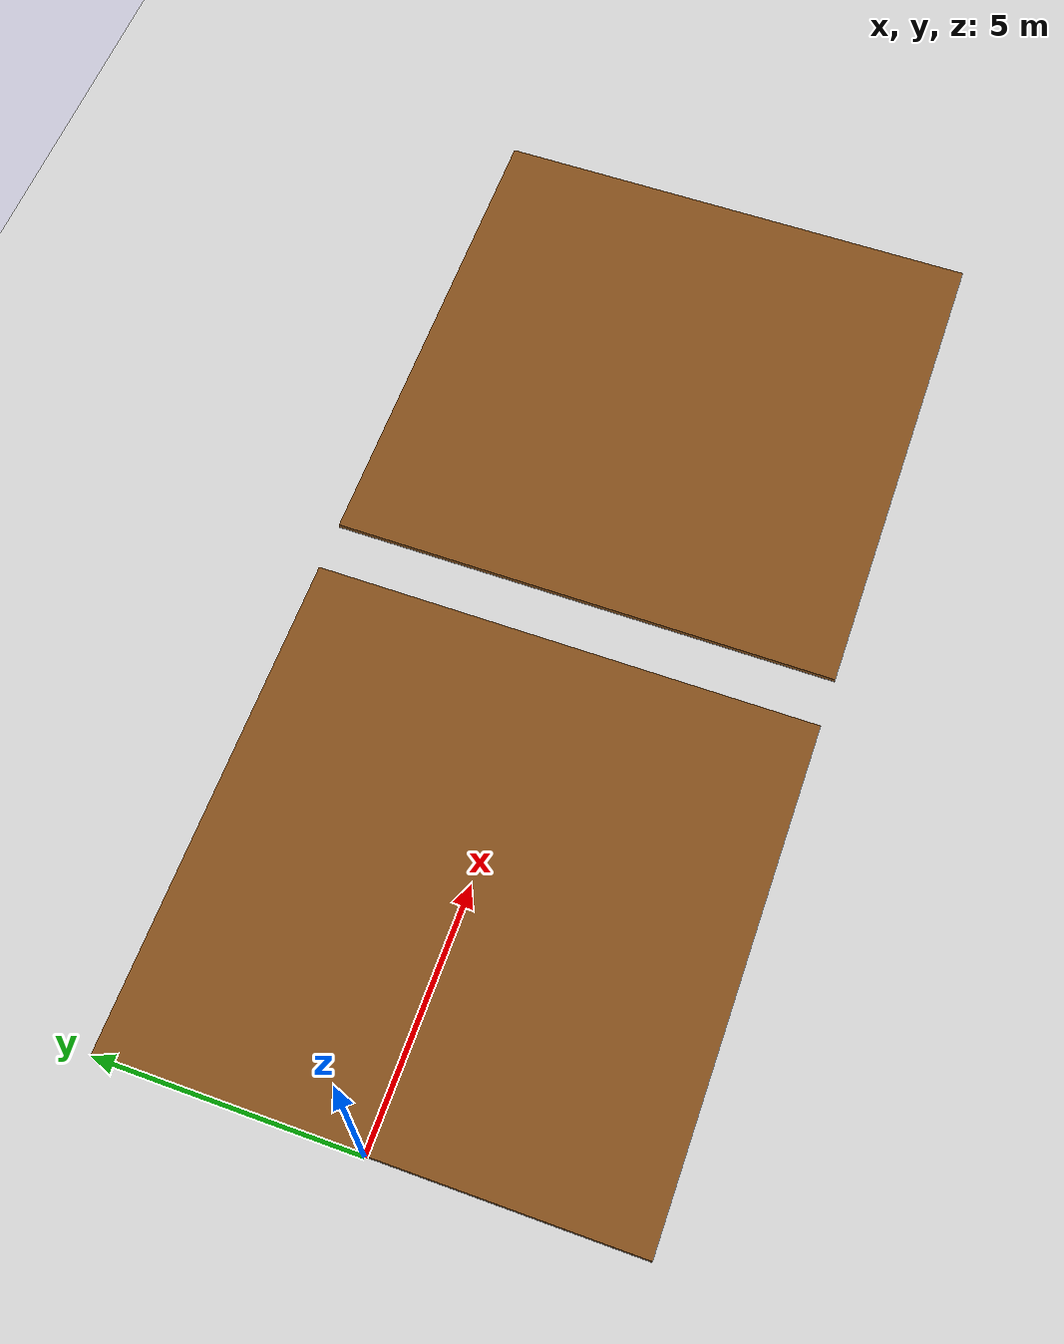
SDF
<?xml version="1.0" ?>
<sdf version="1.9">
  <world name="rough_terrain">

    <!-- 1. Essential Plugins -->
    <plugin filename="gz-sim-physics-system" name="gz::sim::systems::Physics"/>
    <plugin filename="gz-sim-user-commands-system" name="gz::sim::systems::UserCommands"/>
    <plugin filename="gz-sim-scene-broadcaster-system" name="gz::sim::systems::SceneBroadcaster"/>
    <plugin filename="gz-sim-sensors-system" name="gz::sim::systems::Sensors">
      <render_engine>ogre2</render_engine>
    </plugin>

    <!-- 2. Sun & Ground -->
    <light type="directional" name="sun">
      <cast_shadows>true</cast_shadows>
      <pose>0 0 10 0 0 0</pose>
      <diffuse>0.8 0.8 0.8 1</diffuse>
      <specular>0.2 0.2 0.2 1</specular>
      <direction>-0.5 0.1 -0.9</direction>
    </light>

    <model name="ground_plane">
      <static>true</static>
      <link name="link">
        <collision name="collision">
          <geometry><plane><normal>0 0 1</normal><size>100 100</size></plane></geometry>
        </collision>
        <visual name="visual">
          <geometry><plane><normal>0 0 1</normal><size>100 100</size></plane></geometry>
          <material><ambient>0.8 0.8 0.8 1</ambient><diffuse>0.8 0.8 0.8 1</diffuse></material>
        </visual>
      </link>
    </model>

    <!-- 3. The Ditch (Negative Obstacle) -->
    <!-- Two platforms separated by a gap -->
    <model name="platform_1">
      <static>true</static>
      <pose>5 0 0.05 0 0 0</pose>
      <link name="link">
        <collision name="col"><geometry><box><size>10 10 0.1</size></box></geometry></collision>
        <visual name="vis"><geometry><box><size>10 10 0.1</size></box></geometry>
          <material><ambient>0.5 0.3 0.1 1</ambient></material>
        </visual>
      </link>
    </model>

    <model name="platform_2">
      <static>true</static>
      <pose>16 0 0.05 0 0 0</pose> <!-- Gap from 10 to 11 (1m gap) -->
      <link name="link">
        <collision name="col"><geometry><box><size>10 10 0.1</size></box></geometry></collision>
        <visual name="vis"><geometry><box><size>10 10 0.1</size></box></geometry>
          <material><ambient>0.5 0.3 0.1 1</ambient></material>
        </visual>
      </link>
    </model>

  </world>
</sdf>
